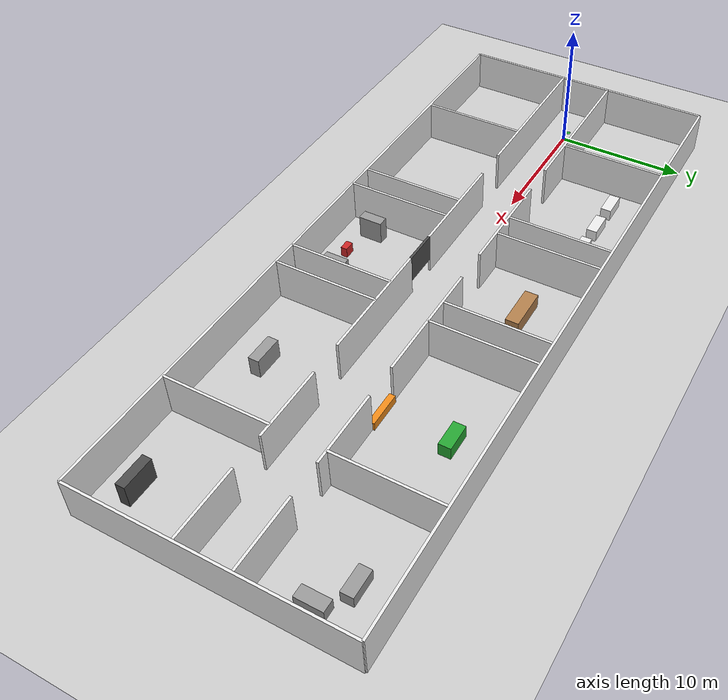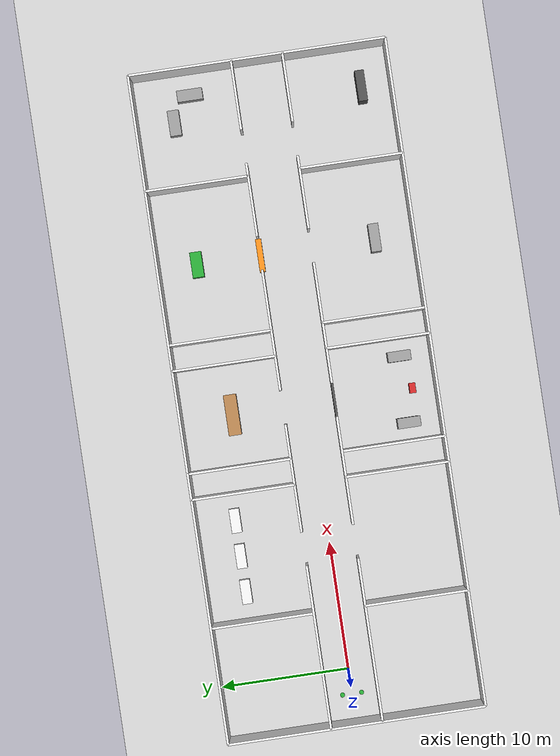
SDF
<sdf version="1.6">
 <world name="default">
  <include><uri>model://sun</uri></include>
  <include><uri>model://ground_plane</uri></include>
  <model name="outer_south_0">
   <static>true</static>
   <pose>22.000000 -10.000000 1.600000 0.000000 0.000000 0.000000</pose>
   <link name="link">
    <collision name="collision">
     <geometry><box><size>52.000000 0.180000 3.200000</size></box></geometry>
    </collision>
    <visual name="visual">
     <geometry><box><size>52.000000 0.180000 3.200000</size></box></geometry>
     <material>
      <script><uri>file://media/materials/scripts/gazebo.material</uri><name>Gazebo/White</name></script>
     </material>
    </visual>
   </link>
  </model>
  <model name="outer_north_0">
   <static>true</static>
   <pose>22.000000 10.000000 1.600000 0.000000 0.000000 0.000000</pose>
   <link name="link">
    <collision name="collision">
     <geometry><box><size>52.000000 0.180000 3.200000</size></box></geometry>
    </collision>
    <visual name="visual">
     <geometry><box><size>52.000000 0.180000 3.200000</size></box></geometry>
     <material>
      <script><uri>file://media/materials/scripts/gazebo.material</uri><name>Gazebo/White</name></script>
     </material>
    </visual>
   </link>
  </model>
  <model name="outer_west_0">
   <static>true</static>
   <pose>-4.000000 0.000000 1.600000 0.000000 0.000000 0.000000</pose>
   <link name="link">
    <collision name="collision">
     <geometry><box><size>0.180000 20.000000 3.200000</size></box></geometry>
    </collision>
    <visual name="visual">
     <geometry><box><size>0.180000 20.000000 3.200000</size></box></geometry>
     <material>
      <script><uri>file://media/materials/scripts/gazebo.material</uri><name>Gazebo/White</name></script>
     </material>
    </visual>
   </link>
  </model>
  <model name="outer_east_0">
   <static>true</static>
   <pose>48.000000 0.000000 1.600000 0.000000 0.000000 0.000000</pose>
   <link name="link">
    <collision name="collision">
     <geometry><box><size>0.180000 20.000000 3.200000</size></box></geometry>
    </collision>
    <visual name="visual">
     <geometry><box><size>0.180000 20.000000 3.200000</size></box></geometry>
     <material>
      <script><uri>file://media/materials/scripts/gazebo.material</uri><name>Gazebo/White</name></script>
     </material>
    </visual>
   </link>
  </model>
  <model name="corridor_north_0">
   <static>true</static>
   <pose>2.350000 2.000000 1.600000 0.000000 0.000000 0.000000</pose>
   <link name="link">
    <collision name="collision">
     <geometry><box><size>12.700000 0.180000 3.200000</size></box></geometry>
    </collision>
    <visual name="visual">
     <geometry><box><size>12.700000 0.180000 3.200000</size></box></geometry>
     <material>
      <script><uri>file://media/materials/scripts/gazebo.material</uri><name>Gazebo/White</name></script>
     </material>
    </visual>
   </link>
  </model>
  <model name="corridor_north_1">
   <static>true</static>
   <pose>15.500000 2.000000 1.600000 0.000000 0.000000 0.000000</pose>
   <link name="link">
    <collision name="collision">
     <geometry><box><size>8.400000 0.180000 3.200000</size></box></geometry>
    </collision>
    <visual name="visual">
     <geometry><box><size>8.400000 0.180000 3.200000</size></box></geometry>
     <material>
      <script><uri>file://media/materials/scripts/gazebo.material</uri><name>Gazebo/White</name></script>
     </material>
    </visual>
   </link>
  </model>
  <model name="corridor_north_2">
   <static>true</static>
   <pose>27.000000 2.000000 1.600000 0.000000 0.000000 0.000000</pose>
   <link name="link">
    <collision name="collision">
     <geometry><box><size>9.400000 0.180000 3.200000</size></box></geometry>
    </collision>
    <visual name="visual">
     <geometry><box><size>9.400000 0.180000 3.200000</size></box></geometry>
     <material>
      <script><uri>file://media/materials/scripts/gazebo.material</uri><name>Gazebo/White</name></script>
     </material>
    </visual>
   </link>
  </model>
  <model name="corridor_north_3">
   <static>true</static>
   <pose>37.150000 2.000000 1.600000 0.000000 0.000000 0.000000</pose>
   <link name="link">
    <collision name="collision">
     <geometry><box><size>5.700000 0.180000 3.200000</size></box></geometry>
    </collision>
    <visual name="visual">
     <geometry><box><size>5.700000 0.180000 3.200000</size></box></geometry>
     <material>
      <script><uri>file://media/materials/scripts/gazebo.material</uri><name>Gazebo/White</name></script>
     </material>
    </visual>
   </link>
  </model>
  <model name="corridor_south_0">
   <static>true</static>
   <pose>2.350000 -2.000000 1.600000 0.000000 0.000000 0.000000</pose>
   <link name="link">
    <collision name="collision">
     <geometry><box><size>12.700000 0.180000 3.200000</size></box></geometry>
    </collision>
    <visual name="visual">
     <geometry><box><size>12.700000 0.180000 3.200000</size></box></geometry>
     <material>
      <script><uri>file://media/materials/scripts/gazebo.material</uri><name>Gazebo/White</name></script>
     </material>
    </visual>
   </link>
  </model>
  <model name="corridor_south_1">
   <static>true</static>
   <pose>15.500000 -2.000000 1.600000 0.000000 0.000000 0.000000</pose>
   <link name="link">
    <collision name="collision">
     <geometry><box><size>8.400000 0.180000 3.200000</size></box></geometry>
    </collision>
    <visual name="visual">
     <geometry><box><size>8.400000 0.180000 3.200000</size></box></geometry>
     <material>
      <script><uri>file://media/materials/scripts/gazebo.material</uri><name>Gazebo/White</name></script>
     </material>
    </visual>
   </link>
  </model>
  <model name="corridor_south_2">
   <static>true</static>
   <pose>27.000000 -2.000000 1.600000 0.000000 0.000000 0.000000</pose>
   <link name="link">
    <collision name="collision">
     <geometry><box><size>9.400000 0.180000 3.200000</size></box></geometry>
    </collision>
    <visual name="visual">
     <geometry><box><size>9.400000 0.180000 3.200000</size></box></geometry>
     <material>
      <script><uri>file://media/materials/scripts/gazebo.material</uri><name>Gazebo/White</name></script>
     </material>
    </visual>
   </link>
  </model>
  <model name="corridor_south_3">
   <static>true</static>
   <pose>37.150000 -2.000000 1.600000 0.000000 0.000000 0.000000</pose>
   <link name="link">
    <collision name="collision">
     <geometry><box><size>5.700000 0.180000 3.200000</size></box></geometry>
    </collision>
    <visual name="visual">
     <geometry><box><size>5.700000 0.180000 3.200000</size></box></geometry>
     <material>
      <script><uri>file://media/materials/scripts/gazebo.material</uri><name>Gazebo/White</name></script>
     </material>
    </visual>
   </link>
  </model>
  <model name="upper_div_5_0">
   <static>true</static>
   <pose>5.000000 6.000000 1.600000 0.000000 0.000000 0.000000</pose>
   <link name="link">
    <collision name="collision">
     <geometry><box><size>0.180000 8.000000 3.200000</size></box></geometry>
    </collision>
    <visual name="visual">
     <geometry><box><size>0.180000 8.000000 3.200000</size></box></geometry>
     <material>
      <script><uri>file://media/materials/scripts/gazebo.material</uri><name>Gazebo/White</name></script>
     </material>
    </visual>
   </link>
  </model>
  <model name="lower_div_5_0">
   <static>true</static>
   <pose>5.000000 -6.000000 1.600000 0.000000 0.000000 0.000000</pose>
   <link name="link">
    <collision name="collision">
     <geometry><box><size>0.180000 8.000000 3.200000</size></box></geometry>
    </collision>
    <visual name="visual">
     <geometry><box><size>0.180000 8.000000 3.200000</size></box></geometry>
     <material>
      <script><uri>file://media/materials/scripts/gazebo.material</uri><name>Gazebo/White</name></script>
     </material>
    </visual>
   </link>
  </model>
  <model name="upper_div_15_0">
   <static>true</static>
   <pose>15.000000 6.000000 1.600000 0.000000 0.000000 0.000000</pose>
   <link name="link">
    <collision name="collision">
     <geometry><box><size>0.180000 8.000000 3.200000</size></box></geometry>
    </collision>
    <visual name="visual">
     <geometry><box><size>0.180000 8.000000 3.200000</size></box></geometry>
     <material>
      <script><uri>file://media/materials/scripts/gazebo.material</uri><name>Gazebo/White</name></script>
     </material>
    </visual>
   </link>
  </model>
  <model name="lower_div_15_0">
   <static>true</static>
   <pose>15.000000 -6.000000 1.600000 0.000000 0.000000 0.000000</pose>
   <link name="link">
    <collision name="collision">
     <geometry><box><size>0.180000 8.000000 3.200000</size></box></geometry>
    </collision>
    <visual name="visual">
     <geometry><box><size>0.180000 8.000000 3.200000</size></box></geometry>
     <material>
      <script><uri>file://media/materials/scripts/gazebo.material</uri><name>Gazebo/White</name></script>
     </material>
    </visual>
   </link>
  </model>
  <model name="upper_div_17_0">
   <static>true</static>
   <pose>17.000000 6.000000 1.600000 0.000000 0.000000 0.000000</pose>
   <link name="link">
    <collision name="collision">
     <geometry><box><size>0.180000 8.000000 3.200000</size></box></geometry>
    </collision>
    <visual name="visual">
     <geometry><box><size>0.180000 8.000000 3.200000</size></box></geometry>
     <material>
      <script><uri>file://media/materials/scripts/gazebo.material</uri><name>Gazebo/White</name></script>
     </material>
    </visual>
   </link>
  </model>
  <model name="lower_div_17_0">
   <static>true</static>
   <pose>17.000000 -6.000000 1.600000 0.000000 0.000000 0.000000</pose>
   <link name="link">
    <collision name="collision">
     <geometry><box><size>0.180000 8.000000 3.200000</size></box></geometry>
    </collision>
    <visual name="visual">
     <geometry><box><size>0.180000 8.000000 3.200000</size></box></geometry>
     <material>
      <script><uri>file://media/materials/scripts/gazebo.material</uri><name>Gazebo/White</name></script>
     </material>
    </visual>
   </link>
  </model>
  <model name="upper_div_25_0">
   <static>true</static>
   <pose>25.000000 6.000000 1.600000 0.000000 0.000000 0.000000</pose>
   <link name="link">
    <collision name="collision">
     <geometry><box><size>0.180000 8.000000 3.200000</size></box></geometry>
    </collision>
    <visual name="visual">
     <geometry><box><size>0.180000 8.000000 3.200000</size></box></geometry>
     <material>
      <script><uri>file://media/materials/scripts/gazebo.material</uri><name>Gazebo/White</name></script>
     </material>
    </visual>
   </link>
  </model>
  <model name="lower_div_25_0">
   <static>true</static>
   <pose>25.000000 -6.000000 1.600000 0.000000 0.000000 0.000000</pose>
   <link name="link">
    <collision name="collision">
     <geometry><box><size>0.180000 8.000000 3.200000</size></box></geometry>
    </collision>
    <visual name="visual">
     <geometry><box><size>0.180000 8.000000 3.200000</size></box></geometry>
     <material>
      <script><uri>file://media/materials/scripts/gazebo.material</uri><name>Gazebo/White</name></script>
     </material>
    </visual>
   </link>
  </model>
  <model name="upper_div_27_0">
   <static>true</static>
   <pose>27.000000 6.000000 1.600000 0.000000 0.000000 0.000000</pose>
   <link name="link">
    <collision name="collision">
     <geometry><box><size>0.180000 8.000000 3.200000</size></box></geometry>
    </collision>
    <visual name="visual">
     <geometry><box><size>0.180000 8.000000 3.200000</size></box></geometry>
     <material>
      <script><uri>file://media/materials/scripts/gazebo.material</uri><name>Gazebo/White</name></script>
     </material>
    </visual>
   </link>
  </model>
  <model name="lower_div_27_0">
   <static>true</static>
   <pose>27.000000 -6.000000 1.600000 0.000000 0.000000 0.000000</pose>
   <link name="link">
    <collision name="collision">
     <geometry><box><size>0.180000 8.000000 3.200000</size></box></geometry>
    </collision>
    <visual name="visual">
     <geometry><box><size>0.180000 8.000000 3.200000</size></box></geometry>
     <material>
      <script><uri>file://media/materials/scripts/gazebo.material</uri><name>Gazebo/White</name></script>
     </material>
    </visual>
   </link>
  </model>
  <model name="upper_div_39_0">
   <static>true</static>
   <pose>39.000000 6.000000 1.600000 0.000000 0.000000 0.000000</pose>
   <link name="link">
    <collision name="collision">
     <geometry><box><size>0.180000 8.000000 3.200000</size></box></geometry>
    </collision>
    <visual name="visual">
     <geometry><box><size>0.180000 8.000000 3.200000</size></box></geometry>
     <material>
      <script><uri>file://media/materials/scripts/gazebo.material</uri><name>Gazebo/White</name></script>
     </material>
    </visual>
   </link>
  </model>
  <model name="lower_div_39_0">
   <static>true</static>
   <pose>39.000000 -6.000000 1.600000 0.000000 0.000000 0.000000</pose>
   <link name="link">
    <collision name="collision">
     <geometry><box><size>0.180000 8.000000 3.200000</size></box></geometry>
    </collision>
    <visual name="visual">
     <geometry><box><size>0.180000 8.000000 3.200000</size></box></geometry>
     <material>
      <script><uri>file://media/materials/scripts/gazebo.material</uri><name>Gazebo/White</name></script>
     </material>
    </visual>
   </link>
  </model>
  <model name="service_fire_shutter">
   <static>true</static>
   <pose>21.000000 -2.000000 2.150000 0.000000 0.000000 0.000000</pose>
   <link name="link">
    <collision name="collision">
     <geometry><box><size>2.600000 0.180000 2.100000</size></box></geometry>
    </collision>
    <visual name="visual">
     <geometry><box><size>2.600000 0.180000 2.100000</size></box></geometry>
     <material>
      <script><uri>file://media/materials/scripts/gazebo.material</uri><name>Gazebo/DarkGrey</name></script>
     </material>
    </visual>
   </link>
  </model>
  <model name="treatment_debris_barrier">
   <static>true</static>
   <pose>33.000000 2.000000 0.325000 0.000000 0.000000 0.000000</pose>
   <link name="link">
    <collision name="collision">
     <geometry><box><size>2.600000 0.450000 0.650000</size></box></geometry>
    </collision>
    <visual name="visual">
     <geometry><box><size>2.600000 0.450000 0.650000</size></box></geometry>
     <material>
      <script><uri>file://media/materials/scripts/gazebo.material</uri><name>Gazebo/Orange</name></script>
     </material>
    </visual>
   </link>
  </model>
  <model name="ward_bed_0">
   <static>true</static>
   <pose>7.200000 7.000000 0.450000 0.000000 0.000000 0.000000</pose>
   <link name="link">
    <collision name="collision">
     <geometry><box><size>1.900000 0.800000 0.900000</size></box></geometry>
    </collision>
    <visual name="visual">
     <geometry><box><size>1.900000 0.800000 0.900000</size></box></geometry>
     <material>
      <script><uri>file://media/materials/scripts/gazebo.material</uri><name>Gazebo/White</name></script>
     </material>
    </visual>
   </link>
  </model>
  <model name="ward_bed_1">
   <static>true</static>
   <pose>10.000000 7.000000 0.450000 0.000000 0.000000 0.000000</pose>
   <link name="link">
    <collision name="collision">
     <geometry><box><size>1.900000 0.800000 0.900000</size></box></geometry>
    </collision>
    <visual name="visual">
     <geometry><box><size>1.900000 0.800000 0.900000</size></box></geometry>
     <material>
      <script><uri>file://media/materials/scripts/gazebo.material</uri><name>Gazebo/White</name></script>
     </material>
    </visual>
   </link>
  </model>
  <model name="ward_bed_2">
   <static>true</static>
   <pose>12.800000 7.000000 0.450000 0.000000 0.000000 0.000000</pose>
   <link name="link">
    <collision name="collision">
     <geometry><box><size>1.900000 0.800000 0.900000</size></box></geometry>
    </collision>
    <visual name="visual">
     <geometry><box><size>1.900000 0.800000 0.900000</size></box></geometry>
     <material>
      <script><uri>file://media/materials/scripts/gazebo.material</uri><name>Gazebo/White</name></script>
     </material>
    </visual>
   </link>
  </model>
  <model name="nurse_station_desk">
   <static>true</static>
   <pose>21.000000 6.000000 0.550000 0.000000 0.000000 0.000000</pose>
   <link name="link">
    <collision name="collision">
     <geometry><box><size>3.200000 1.000000 1.100000</size></box></geometry>
    </collision>
    <visual name="visual">
     <geometry><box><size>3.200000 1.000000 1.100000</size></box></geometry>
     <material>
      <script><uri>file://media/materials/scripts/gazebo.material</uri><name>Gazebo/Wood</name></script>
     </material>
    </visual>
   </link>
  </model>
  <model name="service_cabinet_1">
   <static>true</static>
   <pose>18.400000 -7.500000 0.900000 0.000000 0.000000 0.000000</pose>
   <link name="link">
    <collision name="collision">
     <geometry><box><size>0.800000 1.800000 1.800000</size></box></geometry>
    </collision>
    <visual name="visual">
     <geometry><box><size>0.800000 1.800000 1.800000</size></box></geometry>
     <material>
      <script><uri>file://media/materials/scripts/gazebo.material</uri><name>Gazebo/Grey</name></script>
     </material>
    </visual>
   </link>
  </model>
  <model name="service_cabinet_2">
   <static>true</static>
   <pose>23.600000 -7.500000 0.900000 0.000000 0.000000 0.000000</pose>
   <link name="link">
    <collision name="collision">
     <geometry><box><size>0.800000 1.800000 1.800000</size></box></geometry>
    </collision>
    <visual name="visual">
     <geometry><box><size>0.800000 1.800000 1.800000</size></box></geometry>
     <material>
      <script><uri>file://media/materials/scripts/gazebo.material</uri><name>Gazebo/Grey</name></script>
     </material>
    </visual>
   </link>
  </model>
  <model name="treatment_table">
   <static>true</static>
   <pose>33.000000 7.000000 0.500000 0.000000 0.000000 0.000000</pose>
   <link name="link">
    <collision name="collision">
     <geometry><box><size>2.000000 0.900000 1.000000</size></box></geometry>
    </collision>
    <visual name="visual">
     <geometry><box><size>2.000000 0.900000 1.000000</size></box></geometry>
     <material>
      <script><uri>file://media/materials/scripts/gazebo.material</uri><name>Gazebo/Green</name></script>
     </material>
    </visual>
   </link>
  </model>
  <model name="imaging_console">
   <static>true</static>
   <pose>33.000000 -7.000000 0.750000 0.000000 0.000000 0.000000</pose>
   <link name="link">
    <collision name="collision">
     <geometry><box><size>2.200000 0.800000 1.500000</size></box></geometry>
    </collision>
    <visual name="visual">
     <geometry><box><size>2.200000 0.800000 1.500000</size></box></geometry>
     <material>
      <script><uri>file://media/materials/scripts/gazebo.material</uri><name>Gazebo/Grey</name></script>
     </material>
    </visual>
   </link>
  </model>
  <model name="robot_start_1">
   <static>true</static>
   <pose>-2.000000 -0.750000 0.015000 0.000000 0.000000 0.000000</pose>
   <link name="link">
    <visual name="visual">
     <geometry><cylinder><radius>0.18</radius><length>0.03</length></cylinder></geometry>
     <material>
      <script><uri>file://media/materials/scripts/gazebo.material</uri><name>Gazebo/Green</name></script>
     </material>
    </visual>
   </link>
  </model>
  <model name="robot_start_2">
   <static>true</static>
   <pose>-2.000000 0.750000 0.015000 0.000000 0.000000 0.000000</pose>
   <link name="link">
    <visual name="visual">
     <geometry><cylinder><radius>0.18</radius><length>0.03</length></cylinder></geometry>
     <material>
      <script><uri>file://media/materials/scripts/gazebo.material</uri><name>Gazebo/Green</name></script>
     </material>
    </visual>
   </link>
  </model>
  <model name="robot_start_3">
   <static>true</static>
   <pose>-1.000000 0.000000 0.015000 0.000000 0.000000 0.000000</pose>
   <link name="link">
    <visual name="visual">
     <geometry><cylinder><radius>0.18</radius><length>0.03</length></cylinder></geometry>
     <material>
      <script><uri>file://media/materials/scripts/gazebo.material</uri><name>Gazebo/Green</name></script>
     </material>
    </visual>
   </link>
  </model>
  <model name="corridor_north_4">
   <static>true</static>
   <pose>45.300000 2.000000 1.600000 0.000000 0.000000 0.000000</pose>
   <link name="link">
    <collision name="collision">
     <geometry><box><size>5.400000 0.180000 3.200000</size></box></geometry>
    </collision>
    <visual name="visual">
     <geometry><box><size>5.400000 0.180000 3.200000</size></box></geometry>
     <material>
      <script><uri>file://media/materials/scripts/gazebo.material</uri><name>Gazebo/White</name></script>
     </material>
    </visual>
   </link>
  </model>
  <model name="corridor_south_4">
   <static>true</static>
   <pose>45.300000 -2.000000 1.600000 0.000000 0.000000 0.000000</pose>
   <link name="link">
    <collision name="collision">
     <geometry><box><size>5.400000 0.180000 3.200000</size></box></geometry>
    </collision>
    <visual name="visual">
     <geometry><box><size>5.400000 0.180000 3.200000</size></box></geometry>
     <material>
      <script><uri>file://media/materials/scripts/gazebo.material</uri><name>Gazebo/White</name></script>
     </material>
    </visual>
   </link>
  </model>
  <model name="far_isolation_bed_1">
   <static>true</static>
   <pose>44.200000 7.100000 0.450000 0.000000 0.000000 0.000000</pose>
   <link name="link">
    <collision name="collision">
     <geometry><box><size>2.000000 0.900000 0.900000</size></box></geometry>
    </collision>
    <visual name="visual">
     <geometry><box><size>2.000000 0.900000 0.900000</size></box></geometry>
     <material>
      <script><uri>file://media/materials/scripts/gazebo.material</uri><name>Gazebo/Grey</name></script>
     </material>
    </visual>
   </link>
  </model>
  <model name="far_isolation_bed_2">
   <static>true</static>
   <pose>46.200000 5.600000 0.450000 0.000000 0.000000 1.570800</pose>
   <link name="link">
    <collision name="collision">
     <geometry><box><size>2.000000 0.900000 0.900000</size></box></geometry>
    </collision>
    <visual name="visual">
     <geometry><box><size>2.000000 0.900000 0.900000</size></box></geometry>
     <material>
      <script><uri>file://media/materials/scripts/gazebo.material</uri><name>Gazebo/Grey</name></script>
     </material>
    </visual>
   </link>
  </model>
  <model name="far_archive_cabinet">
   <static>true</static>
   <pose>44.800000 -7.700000 0.900000 0.000000 0.000000 0.000000</pose>
   <link name="link">
    <collision name="collision">
     <geometry><box><size>2.400000 0.700000 1.800000</size></box></geometry>
    </collision>
    <visual name="visual">
     <geometry><box><size>2.400000 0.700000 1.800000</size></box></geometry>
     <material>
      <script><uri>file://media/materials/scripts/gazebo.material</uri><name>Gazebo/DarkGrey</name></script>
     </material>
    </visual>
   </link>
  </model>
  <model name="red_target_case">
   <static>true</static>
   <pose>21.000000 -8.200000 0.400000 0.000000 0.000000 0.000000</pose>
   <link name="link">
    <collision name="collision">
     <geometry><box><size>0.800000 0.500000 0.800000</size></box></geometry>
    </collision>
    <visual name="visual">
     <geometry><box><size>0.800000 0.500000 0.800000</size></box></geometry>
     <material>
      <script><uri>file://media/materials/scripts/gazebo.material</uri><name>Gazebo/Red</name></script>
     </material>
    </visual>
   </link>
  </model>
  <model name="red_target_cross_vertical">
   <static>true</static>
   <pose>21.000000 -8.456000 0.430000 0.000000 0.000000 0.000000</pose>
   <link name="link">
    <visual name="visual">
     <geometry><box><size>0.100000 0.025000 0.420000</size></box></geometry>
     <material>
      <script><uri>file://media/materials/scripts/gazebo.material</uri><name>Gazebo/White</name></script>
     </material>
    </visual>
   </link>
  </model>
  <model name="red_target_cross_horizontal">
   <static>true</static>
   <pose>21.000000 -8.456000 0.430000 0.000000 0.000000 0.000000</pose>
   <link name="link">
    <visual name="visual">
     <geometry><box><size>0.340000 0.025000 0.100000</size></box></geometry>
     <material>
      <script><uri>file://media/materials/scripts/gazebo.material</uri><name>Gazebo/White</name></script>
     </material>
    </visual>
   </link>
  </model>
 </world>
</sdf>
